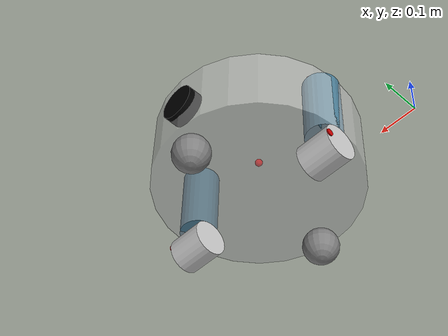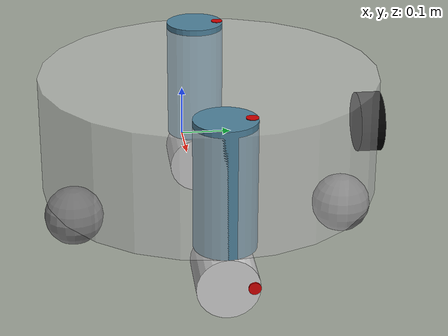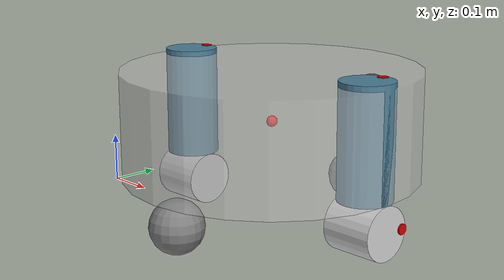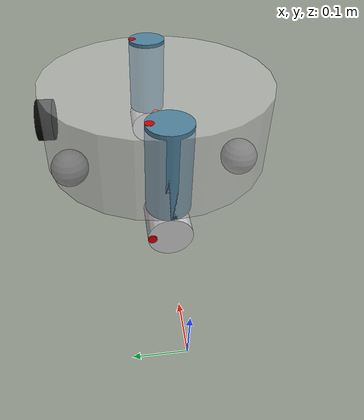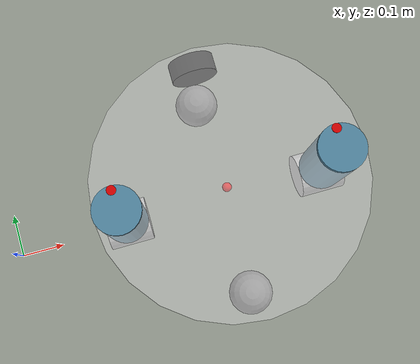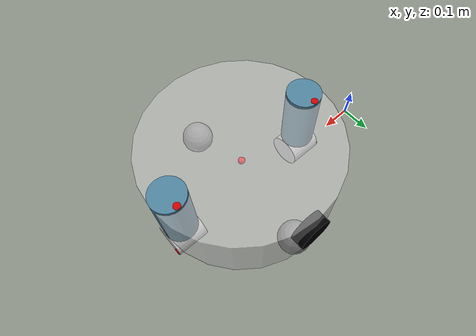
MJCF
<mujoco model="diffmobile">
  <compiler angle="radian"/>
  <option gravity="0 0 -1"/>

  <worldbody>

    <body name="robot_base" pos="0.5 0 0.22">
      <freejoint/>
      <geom name="chassis" type="cylinder" size="0.28 0.1" rgba="0.8 0.8 0.8 0.5" density="15"/>
      <site name="chassis_site" rgba="1 0 0 1" size="0.01" />
      <geom type="cylinder" size="0.05" fromto="0 0.25 0 0 0.29 0" rgba="0.0 0.0 0.0 1.0" mass=".1"/>
      <body pos="0 0.23 0.2">
        <camera name="front_cam" mode="fixed" euler="1.5708 0 3.1416" fovy="100"/>
      </body>
      <body pos="0 0.23 -0.15">
        <joint type="ball" pos="0 0 0"/>
        <geom type="sphere" size="0.05" mass="2"/>
      </body>
      <body pos="0 -0.23 -0.15">
        <joint type="ball" pos="0 0 0"/>
        <geom type="sphere" size="0.05" mass="2"/>
      </body>

      <body pos="0 0 0">
        <joint name="leftWheelOmni" type="hinge" pos ="-0.23 0 0" axis="0 0 -1" range="-6.14159 6.14159"/>
        <geom type="cylinder" size="0.05" fromto="-0.23 0 0.11 -0.23 0 -0.1" rgba="0.3 0.5 0.6 1.0" mass="2"/>
        <geom type="cylinder" size="0.01" fromto="-0.23 0.04 0.111 -0.23 0.04 0.11" rgba="0.8 0.0 0.0 1.0" density=".1"/>
        <body pos="0 0 -0.15">
          <joint name="leftWheel" type="hinge" pos ="0 0 0" axis="-1 0 0"/>
          <geom type="cylinder" size="0.05" fromto="-0.18 0 0 -0.28 0 0" rgba="0.8 0.8 0.8 1.0" mass="2"/>
          <geom type="cylinder" size="0.01" fromto="-0.28 0.04 0 -0.283 0.04 0" rgba="0.8 0.0 0.0 1.0" density=".1"/>
        </body>
      </body>

      <body pos="0 0 0">
        <joint name="rightWheelOmni" type="hinge" pos ="0.23 0 0" axis="0 0 -1"/>
        <geom type="cylinder" size="0.05" fromto="0.23 0 0.11 0.23 0 -0.1" rgba="0.3 0.5 0.6 1.0" mass="2"/>
        <geom type="cylinder" size="0.01" fromto="0.23 0.04 0.111 0.23 0.04 0.11" rgba="0.8 0.0 0.0 1.0" density=".1"/>
        <body pos="0 0 -0.15">
          <joint name="rightWheel" type="hinge" pos="0 0 0" axis="-1 0 0"/>
          <geom type="cylinder" size="0.05" fromto="0.18 0 0 0.28 0 0" rgba="0.8 0.8 0.8 1.0" mass="2"/>
          <geom type="cylinder" size="0.01" fromto="0.28 0.04 0 0.283 0.04 0" rgba="0.8 0.0 0.0 1.0" density=".1"/>
        </body>
      </body>
    </body>
  </worldbody>

  <actuator>
    <velocity name="left_wheel" joint="leftWheel" kv ="5"/>
    <velocity name="right_wheel" joint="rightWheel" kv ="5"/>
    <position name="leftWheelOmni" joint="leftWheelOmni" kp="8" kv="1" ctrlrange="-1.57 1.57"/>
    <position name="rightWheelOmni" joint="rightWheelOmni" kp="8" kv="1" ctrlrange="-1.57 1.57"/>
  </actuator>
  <sensor>
    <framepos name="chassisPos" objtype="site" objname="chassis_site"/>
    <framequat name="chassisQuat" objtype="site" objname="chassis_site"/>
    <framelinvel name="chassisLinVel" objtype="site" objname="chassis_site"/>
    <frameangvel name="chassisAngVel" objtype="site" objname="chassis_site"/>
    <gyro name="chassisGyro" site="chassis_site"/>
    <accelerometer name="chassisAcc" site="chassis_site"/>
  </sensor>
</mujoco>
